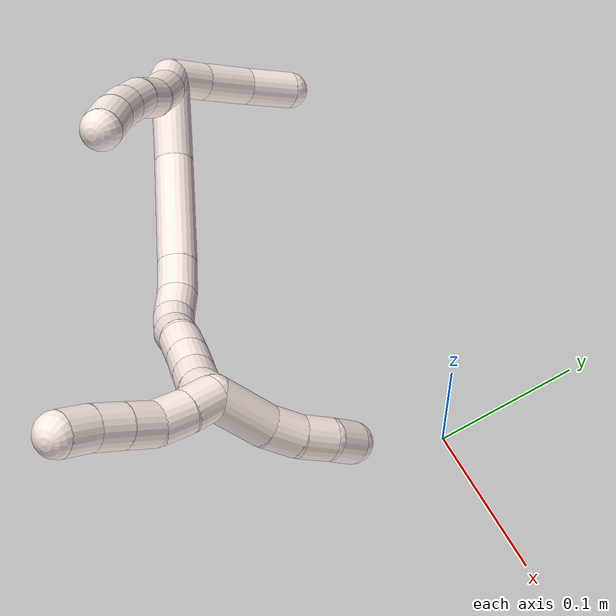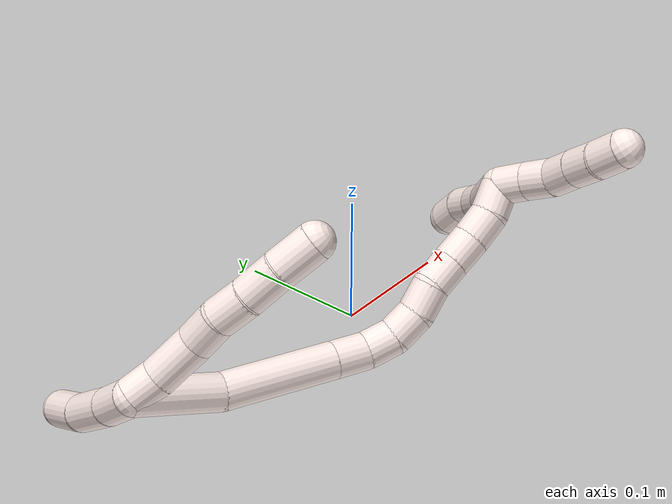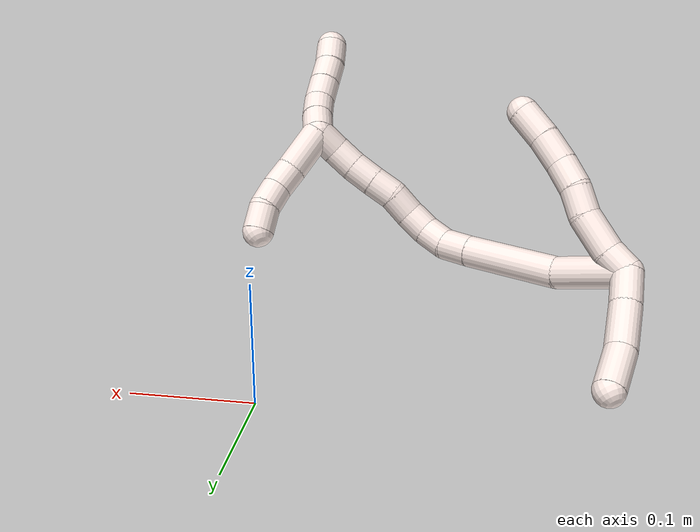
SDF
<sdf version="1.7">
 <world name="default">
  <model name="11">
   <static>0</static>
   <link name="11">
    <collision name="collision-cylinder-e_1_2_8">
     <pose>0.00318 0.00079 0.009537 -0.082662 0.320827 -0.013383</pose>
     <geometry><cylinder><radius>0.0125</radius><length>0.020169</length></cylinder></geometry>
     <surface>
      <friction><ode><mu>1.16</mu><mu2>1.16</mu2><slip1>0</slip1><slip2>0</slip2></ode></friction>
      <contact><ode><kp>1e+06</kp><kd>1</kd><max_vel>0</max_vel><min_depth>0.001</min_depth></ode></contact>
     </surface>
    </collision>
    <visual name="visual-cylinder-e_1_2_8">
     <pose>0.00318 0.00079 0.009537 -0.082662 0.320827 -0.013383</pose>
     <geometry><cylinder><radius>0.0125</radius><length>0.020169</length></cylinder></geometry>
     <material><ambient>1 0.933333 0.909804 1</ambient></material>
    </visual>
    <collision name="collision-cylinder-e_2_8_9">
     <pose>0.008588 0.004456 0.034996 -0.178694 0.136851 -0.012279</pose>
     <geometry><cylinder><radius>0.0125</radius><length>0.032662</length></cylinder></geometry>
     <surface>
      <friction><ode><mu>1.16</mu><mu2>1.16</mu2><slip1>0</slip1><slip2>0</slip2></ode></friction>
      <contact><ode><kp>1e+06</kp><kd>1</kd><max_vel>0</max_vel><min_depth>0.001</min_depth></ode></contact>
     </surface>
    </collision>
    <visual name="visual-cylinder-e_2_8_9">
     <pose>0.008588 0.004456 0.034996 -0.178694 0.136851 -0.012279</pose>
     <geometry><cylinder><radius>0.0125</radius><length>0.032662</length></cylinder></geometry>
     <material><ambient>1 0.933333 0.909804 1</ambient></material>
    </visual>
    <collision name="collision-cylinder-e_3_9_10">
     <pose>0.009552 0.009608 0.061939 -0.203669 -0.111894 0.011446</pose>
     <geometry><cylinder><radius>0.0125</radius><length>0.022651</length></cylinder></geometry>
     <surface>
      <friction><ode><mu>1.16</mu><mu2>1.16</mu2><slip1>0</slip1><slip2>0</slip2></ode></friction>
      <contact><ode><kp>1e+06</kp><kd>1</kd><max_vel>0</max_vel><min_depth>0.001</min_depth></ode></contact>
     </surface>
    </collision>
    <visual name="visual-cylinder-e_3_9_10">
     <pose>0.009552 0.009608 0.061939 -0.203669 -0.111894 0.011446</pose>
     <geometry><cylinder><radius>0.0125</radius><length>0.022651</length></cylinder></geometry>
     <material><ambient>1 0.933333 0.909804 1</ambient></material>
    </visual>
    <collision name="collision-cylinder-e_4_10_11">
     <pose>0.008875 0.012583 0.084335 -0.061376 0.051578 -0.001584</pose>
     <geometry><cylinder><radius>0.0125</radius><length>0.02282</length></cylinder></geometry>
     <surface>
      <friction><ode><mu>1.16</mu><mu2>1.16</mu2><slip1>0</slip1><slip2>0</slip2></ode></friction>
      <contact><ode><kp>1e+06</kp><kd>1</kd><max_vel>0</max_vel><min_depth>0.001</min_depth></ode></contact>
     </surface>
    </collision>
    <visual name="visual-cylinder-e_4_10_11">
     <pose>0.008875 0.012583 0.084335 -0.061376 0.051578 -0.001584</pose>
     <geometry><cylinder><radius>0.0125</radius><length>0.02282</length></cylinder></geometry>
     <material><ambient>1 0.933333 0.909804 1</ambient></material>
    </visual>
    <collision name="collision-cylinder-e_5_11_12">
     <pose>0.011216 0.014927 0.107894 -0.134157 0.141596 -0.009528</pose>
     <geometry><cylinder><radius>0.0125</radius><length>0.024842</length></cylinder></geometry>
     <surface>
      <friction><ode><mu>1.16</mu><mu2>1.16</mu2><slip1>0</slip1><slip2>0</slip2></ode></friction>
      <contact><ode><kp>1e+06</kp><kd>1</kd><max_vel>0</max_vel><min_depth>0.001</min_depth></ode></contact>
     </surface>
    </collision>
    <visual name="visual-cylinder-e_5_11_12">
     <pose>0.011216 0.014927 0.107894 -0.134157 0.141596 -0.009528</pose>
     <geometry><cylinder><radius>0.0125</radius><length>0.024842</length></cylinder></geometry>
     <material><ambient>1 0.933333 0.909804 1</ambient></material>
    </visual>
    <collision name="collision-cylinder-e_6_12_6">
     <pose>0.016059 0.017967 0.133073 -0.106984 0.232185 -0.012488</pose>
     <geometry><cylinder><radius>0.0125</radius><length>0.026855</length></cylinder></geometry>
     <surface>
      <friction><ode><mu>1.16</mu><mu2>1.16</mu2><slip1>0</slip1><slip2>0</slip2></ode></friction>
      <contact><ode><kp>1e+06</kp><kd>1</kd><max_vel>0</max_vel><min_depth>0.001</min_depth></ode></contact>
     </surface>
    </collision>
    <visual name="visual-cylinder-e_6_12_6">
     <pose>0.016059 0.017967 0.133073 -0.106984 0.232185 -0.012488</pose>
     <geometry><cylinder><radius>0.0125</radius><length>0.026855</length></cylinder></geometry>
     <material><ambient>1 0.933333 0.909804 1</ambient></material>
    </visual>
    <collision name="collision-cylinder-e_1_2_13">
     <pose>0.006589 0.001101 -0.01211 -3.05095 0.49659 -2.78756</pose>
     <geometry><cylinder><radius>0.0125</radius><length>0.02766</length></cylinder></geometry>
     <surface>
      <friction><ode><mu>1.16</mu><mu2>1.16</mu2><slip1>0</slip1><slip2>0</slip2></ode></friction>
      <contact><ode><kp>1e+06</kp><kd>1</kd><max_vel>0</max_vel><min_depth>0.001</min_depth></ode></contact>
     </surface>
    </collision>
    <visual name="visual-cylinder-e_1_2_13">
     <pose>0.006589 0.001101 -0.01211 -3.05095 0.49659 -2.78756</pose>
     <geometry><cylinder><radius>0.0125</radius><length>0.02766</length></cylinder></geometry>
     <material><ambient>1 0.933333 0.909804 1</ambient></material>
    </visual>
    <collision name="collision-cylinder-e_2_13_14">
     <pose>0.022901 0.004952 -0.03998 -2.9688 0.546106 -2.5417</pose>
     <geometry><cylinder><radius>0.0125</radius><length>0.037444</length></cylinder></geometry>
     <surface>
      <friction><ode><mu>1.16</mu><mu2>1.16</mu2><slip1>0</slip1><slip2>0</slip2></ode></friction>
      <contact><ode><kp>1e+06</kp><kd>1</kd><max_vel>0</max_vel><min_depth>0.001</min_depth></ode></contact>
     </surface>
    </collision>
    <visual name="visual-cylinder-e_2_13_14">
     <pose>0.022901 0.004952 -0.03998 -2.9688 0.546106 -2.5417</pose>
     <geometry><cylinder><radius>0.0125</radius><length>0.037444</length></cylinder></geometry>
     <material><ambient>1 0.933333 0.909804 1</ambient></material>
    </visual>
    <collision name="collision-cylinder-e_3_14_5">
     <pose>0.043421 0.012598 -0.068543 -2.7764 0.667146 -2.1624</pose>
     <geometry><cylinder><radius>0.0125</radius><length>0.034897</length></cylinder></geometry>
     <surface>
      <friction><ode><mu>1.16</mu><mu2>1.16</mu2><slip1>0</slip1><slip2>0</slip2></ode></friction>
      <contact><ode><kp>1e+06</kp><kd>1</kd><max_vel>0</max_vel><min_depth>0.001</min_depth></ode></contact>
     </surface>
    </collision>
    <visual name="visual-cylinder-e_3_14_5">
     <pose>0.043421 0.012598 -0.068543 -2.7764 0.667146 -2.1624</pose>
     <geometry><cylinder><radius>0.0125</radius><length>0.034897</length></cylinder></geometry>
     <material><ambient>1 0.933333 0.909804 1</ambient></material>
    </visual>
    <collision name="collision-cylinder-e_1_2_15">
     <pose>0.021317 -0.013388 0.015129 0.724406 0.812234 0.323049</pose>
     <geometry><cylinder><radius>0.0125</radius><length>0.058737</length></cylinder></geometry>
     <surface>
      <friction><ode><mu>1.16</mu><mu2>1.16</mu2><slip1>0</slip1><slip2>0</slip2></ode></friction>
      <contact><ode><kp>1e+06</kp><kd>1</kd><max_vel>0</max_vel><min_depth>0.001</min_depth></ode></contact>
     </surface>
    </collision>
    <visual name="visual-cylinder-e_1_2_15">
     <pose>0.021317 -0.013388 0.015129 0.724406 0.812234 0.323049</pose>
     <geometry><cylinder><radius>0.0125</radius><length>0.058737</length></cylinder></geometry>
     <material><ambient>1 0.933333 0.909804 1</ambient></material>
    </visual>
    <collision name="collision-cylinder-e_2_15_16">
     <pose>0.06837 -0.037576 0.056548 0.389815 0.735866 0.151908</pose>
     <geometry><cylinder><radius>0.0125</radius><length>0.076686</length></cylinder></geometry>
     <surface>
      <friction><ode><mu>1.16</mu><mu2>1.16</mu2><slip1>0</slip1><slip2>0</slip2></ode></friction>
      <contact><ode><kp>1e+06</kp><kd>1</kd><max_vel>0</max_vel><min_depth>0.001</min_depth></ode></contact>
     </surface>
    </collision>
    <visual name="visual-cylinder-e_2_15_16">
     <pose>0.06837 -0.037576 0.056548 0.389815 0.735866 0.151908</pose>
     <geometry><cylinder><radius>0.0125</radius><length>0.076686</length></cylinder></geometry>
     <material><ambient>1 0.933333 0.909804 1</ambient></material>
    </visual>
    <collision name="collision-cylinder-e_3_16_17">
     <pose>0.101494 -0.051567 0.091085 0.369036 0.695919 0.13519</pose>
     <geometry><cylinder><radius>0.0125</radius><length>0.023044</length></cylinder></geometry>
     <surface>
      <friction><ode><mu>1.16</mu><mu2>1.16</mu2><slip1>0</slip1><slip2>0</slip2></ode></friction>
      <contact><ode><kp>1e+06</kp><kd>1</kd><max_vel>0</max_vel><min_depth>0.001</min_depth></ode></contact>
     </surface>
    </collision>
    <visual name="visual-cylinder-e_3_16_17">
     <pose>0.101494 -0.051567 0.091085 0.369036 0.695919 0.13519</pose>
     <geometry><cylinder><radius>0.0125</radius><length>0.023044</length></cylinder></geometry>
     <material><ambient>1 0.933333 0.909804 1</ambient></material>
    </visual>
    <collision name="collision-cylinder-e_4_17_18">
     <pose>0.113466 -0.055643 0.108357 0.097933 0.468167 0.02337</pose>
     <geometry><cylinder><radius>0.0125</radius><length>0.020324</length></cylinder></geometry>
     <surface>
      <friction><ode><mu>1.16</mu><mu2>1.16</mu2><slip1>0</slip1><slip2>0</slip2></ode></friction>
      <contact><ode><kp>1e+06</kp><kd>1</kd><max_vel>0</max_vel><min_depth>0.001</min_depth></ode></contact>
     </surface>
    </collision>
    <visual name="visual-cylinder-e_4_17_18">
     <pose>0.113466 -0.055643 0.108357 0.097933 0.468167 0.02337</pose>
     <geometry><cylinder><radius>0.0125</radius><length>0.020324</length></cylinder></geometry>
     <material><ambient>1 0.933333 0.909804 1</ambient></material>
    </visual>
    <collision name="collision-cylinder-e_5_18_19">
     <pose>0.121934 -0.054166 0.126323 -0.258439 0.397448 -0.052325</pose>
     <geometry><cylinder><radius>0.0125</radius><length>0.020059</length></cylinder></geometry>
     <surface>
      <friction><ode><mu>1.16</mu><mu2>1.16</mu2><slip1>0</slip1><slip2>0</slip2></ode></friction>
      <contact><ode><kp>1e+06</kp><kd>1</kd><max_vel>0</max_vel><min_depth>0.001</min_depth></ode></contact>
     </surface>
    </collision>
    <visual name="visual-cylinder-e_5_18_19">
     <pose>0.121934 -0.054166 0.126323 -0.258439 0.397448 -0.052325</pose>
     <geometry><cylinder><radius>0.0125</radius><length>0.020059</length></cylinder></geometry>
     <material><ambient>1 0.933333 0.909804 1</ambient></material>
    </visual>
    <collision name="collision-cylinder-e_6_19_20">
     <pose>0.129257 -0.046812 0.143464 -0.546737 0.344223 -0.097403</pose>
     <geometry><cylinder><radius>0.0125</radius><length>0.020395</length></cylinder></geometry>
     <surface>
      <friction><ode><mu>1.16</mu><mu2>1.16</mu2><slip1>0</slip1><slip2>0</slip2></ode></friction>
      <contact><ode><kp>1e+06</kp><kd>1</kd><max_vel>0</max_vel><min_depth>0.001</min_depth></ode></contact>
     </surface>
    </collision>
    <visual name="visual-cylinder-e_6_19_20">
     <pose>0.129257 -0.046812 0.143464 -0.546737 0.344223 -0.097403</pose>
     <geometry><cylinder><radius>0.0125</radius><length>0.020395</length></cylinder></geometry>
     <material><ambient>1 0.933333 0.909804 1</ambient></material>
    </visual>
    <collision name="collision-cylinder-e_7_20_21">
     <pose>0.138147 -0.038878 0.159617 -0.354405 0.571041 -0.105038</pose>
     <geometry><cylinder><radius>0.0125</radius><length>0.020159</length></cylinder></geometry>
     <surface>
      <friction><ode><mu>1.16</mu><mu2>1.16</mu2><slip1>0</slip1><slip2>0</slip2></ode></friction>
      <contact><ode><kp>1e+06</kp><kd>1</kd><max_vel>0</max_vel><min_depth>0.001</min_depth></ode></contact>
     </surface>
    </collision>
    <visual name="visual-cylinder-e_7_20_21">
     <pose>0.138147 -0.038878 0.159617 -0.354405 0.571041 -0.105038</pose>
     <geometry><cylinder><radius>0.0125</radius><length>0.020159</length></cylinder></geometry>
     <material><ambient>1 0.933333 0.909804 1</ambient></material>
    </visual>
    <collision name="collision-cylinder-e_8_21_22">
     <pose>0.14875 -0.033064 0.17585 -0.33379 0.531761 -0.09169</pose>
     <geometry><cylinder><radius>0.0125</radius><length>0.020334</length></cylinder></geometry>
     <surface>
      <friction><ode><mu>1.16</mu><mu2>1.16</mu2><slip1>0</slip1><slip2>0</slip2></ode></friction>
      <contact><ode><kp>1e+06</kp><kd>1</kd><max_vel>0</max_vel><min_depth>0.001</min_depth></ode></contact>
     </surface>
    </collision>
    <visual name="visual-cylinder-e_8_21_22">
     <pose>0.14875 -0.033064 0.17585 -0.33379 0.531761 -0.09169</pose>
     <geometry><cylinder><radius>0.0125</radius><length>0.020334</length></cylinder></geometry>
     <material><ambient>1 0.933333 0.909804 1</ambient></material>
    </visual>
    <collision name="collision-cylinder-e_9_22_23">
     <pose>0.158175 -0.026699 0.192476 -0.3965 0.4409 -0.089974</pose>
     <geometry><cylinder><radius>0.0125</radius><length>0.020011</length></cylinder></geometry>
     <surface>
      <friction><ode><mu>1.16</mu><mu2>1.16</mu2><slip1>0</slip1><slip2>0</slip2></ode></friction>
      <contact><ode><kp>1e+06</kp><kd>1</kd><max_vel>0</max_vel><min_depth>0.001</min_depth></ode></contact>
     </surface>
    </collision>
    <visual name="visual-cylinder-e_9_22_23">
     <pose>0.158175 -0.026699 0.192476 -0.3965 0.4409 -0.089974</pose>
     <geometry><cylinder><radius>0.0125</radius><length>0.020011</length></cylinder></geometry>
     <material><ambient>1 0.933333 0.909804 1</ambient></material>
    </visual>
    <collision name="collision-cylinder-e_10_23_1">
     <pose>0.166643 -0.01724 0.207845 -0.704066 0.427576 -0.159164</pose>
     <geometry><cylinder><radius>0.0125</radius><length>0.02025</length></cylinder></geometry>
     <surface>
      <friction><ode><mu>1.16</mu><mu2>1.16</mu2><slip1>0</slip1><slip2>0</slip2></ode></friction>
      <contact><ode><kp>1e+06</kp><kd>1</kd><max_vel>0</max_vel><min_depth>0.001</min_depth></ode></contact>
     </surface>
    </collision>
    <visual name="visual-cylinder-e_10_23_1">
     <pose>0.166643 -0.01724 0.207845 -0.704066 0.427576 -0.159164</pose>
     <geometry><cylinder><radius>0.0125</radius><length>0.02025</length></cylinder></geometry>
     <material><ambient>1 0.933333 0.909804 1</ambient></material>
    </visual>
    <collision name="collision-cylinder-e_1_1_24">
     <pose>0.186581 -0.013125 0.204632 2.96291 0.98682 2.81148</pose>
     <geometry><cylinder><radius>0.0125</radius><length>0.037732</length></cylinder></geometry>
     <surface>
      <friction><ode><mu>1.16</mu><mu2>1.16</mu2><slip1>0</slip1><slip2>0</slip2></ode></friction>
      <contact><ode><kp>1e+06</kp><kd>1</kd><max_vel>0</max_vel><min_depth>0.001</min_depth></ode></contact>
     </surface>
    </collision>
    <visual name="visual-cylinder-e_1_1_24">
     <pose>0.186581 -0.013125 0.204632 2.96291 0.98682 2.81148</pose>
     <geometry><cylinder><radius>0.0125</radius><length>0.037732</length></cylinder></geometry>
     <material><ambient>1 0.933333 0.909804 1</ambient></material>
    </visual>
    <collision name="collision-cylinder-e_2_24_25">
     <pose>0.210833 -0.014174 0.188197 -3.01334 0.937449 -2.8893</pose>
     <geometry><cylinder><radius>0.0125</radius><length>0.02112</length></cylinder></geometry>
     <surface>
      <friction><ode><mu>1.16</mu><mu2>1.16</mu2><slip1>0</slip1><slip2>0</slip2></ode></friction>
      <contact><ode><kp>1e+06</kp><kd>1</kd><max_vel>0</max_vel><min_depth>0.001</min_depth></ode></contact>
     </surface>
    </collision>
    <visual name="visual-cylinder-e_2_24_25">
     <pose>0.210833 -0.014174 0.188197 -3.01334 0.937449 -2.8893</pose>
     <geometry><cylinder><radius>0.0125</radius><length>0.02112</length></cylinder></geometry>
     <material><ambient>1 0.933333 0.909804 1</ambient></material>
    </visual>
    <collision name="collision-cylinder-e_3_25_26">
     <pose>0.226457 -0.011513 0.174873 -2.8861 0.767921 -2.52596</pose>
     <geometry><cylinder><radius>0.0125</radius><length>0.020477</length></cylinder></geometry>
     <surface>
      <friction><ode><mu>1.16</mu><mu2>1.16</mu2><slip1>0</slip1><slip2>0</slip2></ode></friction>
      <contact><ode><kp>1e+06</kp><kd>1</kd><max_vel>0</max_vel><min_depth>0.001</min_depth></ode></contact>
     </surface>
    </collision>
    <visual name="visual-cylinder-e_3_25_26">
     <pose>0.226457 -0.011513 0.174873 -2.8861 0.767921 -2.52596</pose>
     <geometry><cylinder><radius>0.0125</radius><length>0.020477</length></cylinder></geometry>
     <material><ambient>1 0.933333 0.909804 1</ambient></material>
    </visual>
    <collision name="collision-cylinder-e_4_26_4">
     <pose>0.239354 -0.010478 0.159222 3.04505 0.594089 2.82853</pose>
     <geometry><cylinder><radius>0.0125</radius><length>0.020671</length></cylinder></geometry>
     <surface>
      <friction><ode><mu>1.16</mu><mu2>1.16</mu2><slip1>0</slip1><slip2>0</slip2></ode></friction>
      <contact><ode><kp>1e+06</kp><kd>1</kd><max_vel>0</max_vel><min_depth>0.001</min_depth></ode></contact>
     </surface>
    </collision>
    <visual name="visual-cylinder-e_4_26_4">
     <pose>0.239354 -0.010478 0.159222 3.04505 0.594089 2.82853</pose>
     <geometry><cylinder><radius>0.0125</radius><length>0.020671</length></cylinder></geometry>
     <material><ambient>1 0.933333 0.909804 1</ambient></material>
    </visual>
    <collision name="collision-cylinder-e_1_1_27">
     <pose>0.168497 -0.014558 0.224019 0.344376 -0.23665 -0.041343</pose>
     <geometry><cylinder><radius>0.0125</radius><length>0.02</length></cylinder></geometry>
     <surface>
      <friction><ode><mu>1.16</mu><mu2>1.16</mu2><slip1>0</slip1><slip2>0</slip2></ode></friction>
      <contact><ode><kp>1e+06</kp><kd>1</kd><max_vel>0</max_vel><min_depth>0.001</min_depth></ode></contact>
     </surface>
    </collision>
    <visual name="visual-cylinder-e_1_1_27">
     <pose>0.168497 -0.014558 0.224019 0.344376 -0.23665 -0.041343</pose>
     <geometry><cylinder><radius>0.0125</radius><length>0.02</length></cylinder></geometry>
     <material><ambient>1 0.933333 0.909804 1</ambient></material>
    </visual>
    <collision name="collision-cylinder-e_2_27_28">
     <pose>0.162808 -0.02122 0.241966 0.366775 -0.341109 -0.063865</pose>
     <geometry><cylinder><radius>0.0125</radius><length>0.02</length></cylinder></geometry>
     <surface>
      <friction><ode><mu>1.16</mu><mu2>1.16</mu2><slip1>0</slip1><slip2>0</slip2></ode></friction>
      <contact><ode><kp>1e+06</kp><kd>1</kd><max_vel>0</max_vel><min_depth>0.001</min_depth></ode></contact>
     </surface>
    </collision>
    <visual name="visual-cylinder-e_2_27_28">
     <pose>0.162808 -0.02122 0.241966 0.366775 -0.341109 -0.063865</pose>
     <geometry><cylinder><radius>0.0125</radius><length>0.02</length></cylinder></geometry>
     <material><ambient>1 0.933333 0.909804 1</ambient></material>
    </visual>
    <collision name="collision-cylinder-e_3_28_29">
     <pose>0.154225 -0.025612 0.259221 0.119198 -0.551272 -0.03375</pose>
     <geometry><cylinder><radius>0.0125</radius><length>0.02</length></cylinder></geometry>
     <surface>
      <friction><ode><mu>1.16</mu><mu2>1.16</mu2><slip1>0</slip1><slip2>0</slip2></ode></friction>
      <contact><ode><kp>1e+06</kp><kd>1</kd><max_vel>0</max_vel><min_depth>0.001</min_depth></ode></contact>
     </surface>
    </collision>
    <visual name="visual-cylinder-e_3_28_29">
     <pose>0.154225 -0.025612 0.259221 0.119198 -0.551272 -0.03375</pose>
     <geometry><cylinder><radius>0.0125</radius><length>0.02</length></cylinder></geometry>
     <material><ambient>1 0.933333 0.909804 1</ambient></material>
    </visual>
    <collision name="collision-cylinder-e_4_29_30">
     <pose>0.143725 -0.027892 0.276089 0.149491 -0.554046 -0.042578</pose>
     <geometry><cylinder><radius>0.0125</radius><length>0.02</length></cylinder></geometry>
     <surface>
      <friction><ode><mu>1.16</mu><mu2>1.16</mu2><slip1>0</slip1><slip2>0</slip2></ode></friction>
      <contact><ode><kp>1e+06</kp><kd>1</kd><max_vel>0</max_vel><min_depth>0.001</min_depth></ode></contact>
     </surface>
    </collision>
    <visual name="visual-cylinder-e_4_29_30">
     <pose>0.143725 -0.027892 0.276089 0.149491 -0.554046 -0.042578</pose>
     <geometry><cylinder><radius>0.0125</radius><length>0.02</length></cylinder></geometry>
     <material><ambient>1 0.933333 0.909804 1</ambient></material>
    </visual>
    <collision name="collision-cylinder-e_5_30_3">
     <pose>0.13438 -0.030194 0.293567 0.11373 -0.420719 -0.024309</pose>
     <geometry><cylinder><radius>0.0125</radius><length>0.02</length></cylinder></geometry>
     <surface>
      <friction><ode><mu>1.16</mu><mu2>1.16</mu2><slip1>0</slip1><slip2>0</slip2></ode></friction>
      <contact><ode><kp>1e+06</kp><kd>1</kd><max_vel>0</max_vel><min_depth>0.001</min_depth></ode></contact>
     </surface>
    </collision>
    <visual name="visual-cylinder-e_5_30_3">
     <pose>0.13438 -0.030194 0.293567 0.11373 -0.420719 -0.024309</pose>
     <geometry><cylinder><radius>0.0125</radius><length>0.02</length></cylinder></geometry>
     <material><ambient>1 0.933333 0.909804 1</ambient></material>
    </visual>
    <collision name="collision-sphere-3">
     <pose>0.130296 -0.03123 0.302636 0 -0 0</pose>
     <geometry><sphere><radius>0.0125</radius></sphere></geometry>
     <surface>
      <friction><ode><mu>1.16</mu><mu2>1.16</mu2><slip1>0</slip1><slip2>0</slip2></ode></friction>
      <contact><ode><kp>1e+06</kp><kd>1</kd><max_vel>0</max_vel><min_depth>0.001</min_depth></ode></contact>
     </surface>
    </collision>
    <visual name="visual-sphere-3">
     <pose>0.130296 -0.03123 0.302636 0 -0 0</pose>
     <geometry><sphere><radius>0.0125</radius></sphere></geometry>
     <material><ambient>1 0.933333 0.909804 1</ambient></material>
    </visual>
    <collision name="collision-sphere-30">
     <pose>0.138464 -0.029158 0.284498 0 -0 0</pose>
     <geometry><sphere><radius>0.0125</radius></sphere></geometry>
     <surface>
      <friction><ode><mu>1.16</mu><mu2>1.16</mu2><slip1>0</slip1><slip2>0</slip2></ode></friction>
      <contact><ode><kp>1e+06</kp><kd>1</kd><max_vel>0</max_vel><min_depth>0.001</min_depth></ode></contact>
     </surface>
    </collision>
    <visual name="visual-sphere-30">
     <pose>0.138464 -0.029158 0.284498 0 -0 0</pose>
     <geometry><sphere><radius>0.0125</radius></sphere></geometry>
     <material><ambient>1 0.933333 0.909804 1</ambient></material>
    </visual>
    <collision name="collision-sphere-29">
     <pose>0.148987 -0.026625 0.26768 0 -0 0</pose>
     <geometry><sphere><radius>0.0125</radius></sphere></geometry>
     <surface>
      <friction><ode><mu>1.16</mu><mu2>1.16</mu2><slip1>0</slip1><slip2>0</slip2></ode></friction>
      <contact><ode><kp>1e+06</kp><kd>1</kd><max_vel>0</max_vel><min_depth>0.001</min_depth></ode></contact>
     </surface>
    </collision>
    <visual name="visual-sphere-29">
     <pose>0.148987 -0.026625 0.26768 0 -0 0</pose>
     <geometry><sphere><radius>0.0125</radius></sphere></geometry>
     <material><ambient>1 0.933333 0.909804 1</ambient></material>
    </visual>
    <collision name="collision-sphere-28">
     <pose>0.159462 -0.024599 0.250763 0 -0 0</pose>
     <geometry><sphere><radius>0.0125</radius></sphere></geometry>
     <surface>
      <friction><ode><mu>1.16</mu><mu2>1.16</mu2><slip1>0</slip1><slip2>0</slip2></ode></friction>
      <contact><ode><kp>1e+06</kp><kd>1</kd><max_vel>0</max_vel><min_depth>0.001</min_depth></ode></contact>
     </surface>
    </collision>
    <visual name="visual-sphere-28">
     <pose>0.159462 -0.024599 0.250763 0 -0 0</pose>
     <geometry><sphere><radius>0.0125</radius></sphere></geometry>
     <material><ambient>1 0.933333 0.909804 1</ambient></material>
    </visual>
    <collision name="collision-sphere-27">
     <pose>0.166153 -0.01784 0.233169 0 -0 0</pose>
     <geometry><sphere><radius>0.0125</radius></sphere></geometry>
     <surface>
      <friction><ode><mu>1.16</mu><mu2>1.16</mu2><slip1>0</slip1><slip2>0</slip2></ode></friction>
      <contact><ode><kp>1e+06</kp><kd>1</kd><max_vel>0</max_vel><min_depth>0.001</min_depth></ode></contact>
     </surface>
    </collision>
    <visual name="visual-sphere-27">
     <pose>0.166153 -0.01784 0.233169 0 -0 0</pose>
     <geometry><sphere><radius>0.0125</radius></sphere></geometry>
     <material><ambient>1 0.933333 0.909804 1</ambient></material>
    </visual>
    <collision name="collision-sphere-4">
     <pose>0.245139 -0.011303 0.150697 0 -0 0</pose>
     <geometry><sphere><radius>0.0125</radius></sphere></geometry>
     <surface>
      <friction><ode><mu>1.16</mu><mu2>1.16</mu2><slip1>0</slip1><slip2>0</slip2></ode></friction>
      <contact><ode><kp>1e+06</kp><kd>1</kd><max_vel>0</max_vel><min_depth>0.001</min_depth></ode></contact>
     </surface>
    </collision>
    <visual name="visual-sphere-4">
     <pose>0.245139 -0.011303 0.150697 0 -0 0</pose>
     <geometry><sphere><radius>0.0125</radius></sphere></geometry>
     <material><ambient>1 0.933333 0.909804 1</ambient></material>
    </visual>
    <collision name="collision-sphere-26">
     <pose>0.233569 -0.009652 0.167747 0 -0 0</pose>
     <geometry><sphere><radius>0.0125</radius></sphere></geometry>
     <surface>
      <friction><ode><mu>1.16</mu><mu2>1.16</mu2><slip1>0</slip1><slip2>0</slip2></ode></friction>
      <contact><ode><kp>1e+06</kp><kd>1</kd><max_vel>0</max_vel><min_depth>0.001</min_depth></ode></contact>
     </surface>
    </collision>
    <visual name="visual-sphere-26">
     <pose>0.233569 -0.009652 0.167747 0 -0 0</pose>
     <geometry><sphere><radius>0.0125</radius></sphere></geometry>
     <material><ambient>1 0.933333 0.909804 1</ambient></material>
    </visual>
    <collision name="collision-sphere-25">
     <pose>0.219345 -0.013375 0.181999 0 -0 0</pose>
     <geometry><sphere><radius>0.0125</radius></sphere></geometry>
     <surface>
      <friction><ode><mu>1.16</mu><mu2>1.16</mu2><slip1>0</slip1><slip2>0</slip2></ode></friction>
      <contact><ode><kp>1e+06</kp><kd>1</kd><max_vel>0</max_vel><min_depth>0.001</min_depth></ode></contact>
     </surface>
    </collision>
    <visual name="visual-sphere-25">
     <pose>0.219345 -0.013375 0.181999 0 -0 0</pose>
     <geometry><sphere><radius>0.0125</radius></sphere></geometry>
     <material><ambient>1 0.933333 0.909804 1</ambient></material>
    </visual>
    <collision name="collision-sphere-24">
     <pose>0.202321 -0.014974 0.194396 0 -0 0</pose>
     <geometry><sphere><radius>0.0125</radius></sphere></geometry>
     <surface>
      <friction><ode><mu>1.16</mu><mu2>1.16</mu2><slip1>0</slip1><slip2>0</slip2></ode></friction>
      <contact><ode><kp>1e+06</kp><kd>1</kd><max_vel>0</max_vel><min_depth>0.001</min_depth></ode></contact>
     </surface>
    </collision>
    <visual name="visual-sphere-24">
     <pose>0.202321 -0.014974 0.194396 0 -0 0</pose>
     <geometry><sphere><radius>0.0125</radius></sphere></geometry>
     <material><ambient>1 0.933333 0.909804 1</ambient></material>
    </visual>
    <collision name="collision-sphere-1">
     <pose>0.170842 -0.011276 0.214868 0 -0 0</pose>
     <geometry><sphere><radius>0.0125</radius></sphere></geometry>
     <surface>
      <friction><ode><mu>1.16</mu><mu2>1.16</mu2><slip1>0</slip1><slip2>0</slip2></ode></friction>
      <contact><ode><kp>1e+06</kp><kd>1</kd><max_vel>0</max_vel><min_depth>0.001</min_depth></ode></contact>
     </surface>
    </collision>
    <visual name="visual-sphere-1">
     <pose>0.170842 -0.011276 0.214868 0 -0 0</pose>
     <geometry><sphere><radius>0.0125</radius></sphere></geometry>
     <material><ambient>1 0.933333 0.909804 1</ambient></material>
    </visual>
    <collision name="collision-sphere-23">
     <pose>0.162445 -0.023204 0.200823 0 -0 0</pose>
     <geometry><sphere><radius>0.0125</radius></sphere></geometry>
     <surface>
      <friction><ode><mu>1.16</mu><mu2>1.16</mu2><slip1>0</slip1><slip2>0</slip2></ode></friction>
      <contact><ode><kp>1e+06</kp><kd>1</kd><max_vel>0</max_vel><min_depth>0.001</min_depth></ode></contact>
     </surface>
    </collision>
    <visual name="visual-sphere-23">
     <pose>0.162445 -0.023204 0.200823 0 -0 0</pose>
     <geometry><sphere><radius>0.0125</radius></sphere></geometry>
     <material><ambient>1 0.933333 0.909804 1</ambient></material>
    </visual>
    <collision name="collision-sphere-22">
     <pose>0.153905 -0.030193 0.18413 0 -0 0</pose>
     <geometry><sphere><radius>0.0125</radius></sphere></geometry>
     <surface>
      <friction><ode><mu>1.16</mu><mu2>1.16</mu2><slip1>0</slip1><slip2>0</slip2></ode></friction>
      <contact><ode><kp>1e+06</kp><kd>1</kd><max_vel>0</max_vel><min_depth>0.001</min_depth></ode></contact>
     </surface>
    </collision>
    <visual name="visual-sphere-22">
     <pose>0.153905 -0.030193 0.18413 0 -0 0</pose>
     <geometry><sphere><radius>0.0125</radius></sphere></geometry>
     <material><ambient>1 0.933333 0.909804 1</ambient></material>
    </visual>
    <collision name="collision-sphere-21">
     <pose>0.143595 -0.035935 0.167571 0 -0 0</pose>
     <geometry><sphere><radius>0.0125</radius></sphere></geometry>
     <surface>
      <friction><ode><mu>1.16</mu><mu2>1.16</mu2><slip1>0</slip1><slip2>0</slip2></ode></friction>
      <contact><ode><kp>1e+06</kp><kd>1</kd><max_vel>0</max_vel><min_depth>0.001</min_depth></ode></contact>
     </surface>
    </collision>
    <visual name="visual-sphere-21">
     <pose>0.143595 -0.035935 0.167571 0 -0 0</pose>
     <geometry><sphere><radius>0.0125</radius></sphere></geometry>
     <material><ambient>1 0.933333 0.909804 1</ambient></material>
    </visual>
    <collision name="collision-sphere-12">
     <pose>0.012969 0.016572 0.120081 0 -0 0</pose>
     <geometry><sphere><radius>0.0125</radius></sphere></geometry>
     <surface>
      <friction><ode><mu>1.16</mu><mu2>1.16</mu2><slip1>0</slip1><slip2>0</slip2></ode></friction>
      <contact><ode><kp>1e+06</kp><kd>1</kd><max_vel>0</max_vel><min_depth>0.001</min_depth></ode></contact>
     </surface>
    </collision>
    <visual name="visual-sphere-12">
     <pose>0.012969 0.016572 0.120081 0 -0 0</pose>
     <geometry><sphere><radius>0.0125</radius></sphere></geometry>
     <material><ambient>1 0.933333 0.909804 1</ambient></material>
    </visual>
    <collision name="collision-sphere-11">
     <pose>0.009464 0.013282 0.095708 0 -0 0</pose>
     <geometry><sphere><radius>0.0125</radius></sphere></geometry>
     <surface>
      <friction><ode><mu>1.16</mu><mu2>1.16</mu2><slip1>0</slip1><slip2>0</slip2></ode></friction>
      <contact><ode><kp>1e+06</kp><kd>1</kd><max_vel>0</max_vel><min_depth>0.001</min_depth></ode></contact>
     </surface>
    </collision>
    <visual name="visual-sphere-11">
     <pose>0.009464 0.013282 0.095708 0 -0 0</pose>
     <geometry><sphere><radius>0.0125</radius></sphere></geometry>
     <material><ambient>1 0.933333 0.909804 1</ambient></material>
    </visual>
    <collision name="collision-sphere-10">
     <pose>0.008287 0.011885 0.072961 0 -0 0</pose>
     <geometry><sphere><radius>0.0125</radius></sphere></geometry>
     <surface>
      <friction><ode><mu>1.16</mu><mu2>1.16</mu2><slip1>0</slip1><slip2>0</slip2></ode></friction>
      <contact><ode><kp>1e+06</kp><kd>1</kd><max_vel>0</max_vel><min_depth>0.001</min_depth></ode></contact>
     </surface>
    </collision>
    <visual name="visual-sphere-10">
     <pose>0.008287 0.011885 0.072961 0 -0 0</pose>
     <geometry><sphere><radius>0.0125</radius></sphere></geometry>
     <material><ambient>1 0.933333 0.909804 1</ambient></material>
    </visual>
    <collision name="collision-sphere-9">
     <pose>0.010816 0.007332 0.050917 0 -0 0</pose>
     <geometry><sphere><radius>0.0125</radius></sphere></geometry>
     <surface>
      <friction><ode><mu>1.16</mu><mu2>1.16</mu2><slip1>0</slip1><slip2>0</slip2></ode></friction>
      <contact><ode><kp>1e+06</kp><kd>1</kd><max_vel>0</max_vel><min_depth>0.001</min_depth></ode></contact>
     </surface>
    </collision>
    <visual name="visual-sphere-9">
     <pose>0.010816 0.007332 0.050917 0 -0 0</pose>
     <geometry><sphere><radius>0.0125</radius></sphere></geometry>
     <material><ambient>1 0.933333 0.909804 1</ambient></material>
    </visual>
    <collision name="collision-sphere-2">
     <geometry><sphere><radius>0.0125</radius></sphere></geometry>
     <surface>
      <friction><ode><mu>1.16</mu><mu2>1.16</mu2><slip1>0</slip1><slip2>0</slip2></ode></friction>
      <contact><ode><kp>1e+06</kp><kd>1</kd><max_vel>0</max_vel><min_depth>0.001</min_depth></ode></contact>
     </surface>
    </collision>
    <visual name="visual-sphere-2">
     <geometry><sphere><radius>0.0125</radius></sphere></geometry>
     <material><ambient>1 0.933333 0.909804 1</ambient></material>
    </visual>
    <collision name="collision-sphere-19">
     <pose>0.125816 -0.051803 0.135264 0 -0 0</pose>
     <geometry><sphere><radius>0.0125</radius></sphere></geometry>
     <surface>
      <friction><ode><mu>1.16</mu><mu2>1.16</mu2><slip1>0</slip1><slip2>0</slip2></ode></friction>
      <contact><ode><kp>1e+06</kp><kd>1</kd><max_vel>0</max_vel><min_depth>0.001</min_depth></ode></contact>
     </surface>
    </collision>
    <visual name="visual-sphere-19">
     <pose>0.125816 -0.051803 0.135264 0 -0 0</pose>
     <geometry><sphere><radius>0.0125</radius></sphere></geometry>
     <material><ambient>1 0.933333 0.909804 1</ambient></material>
    </visual>
    <collision name="collision-sphere-8">
     <pose>0.00636 0.00158 0.019075 0 -0 0</pose>
     <geometry><sphere><radius>0.0125</radius></sphere></geometry>
     <surface>
      <friction><ode><mu>1.16</mu><mu2>1.16</mu2><slip1>0</slip1><slip2>0</slip2></ode></friction>
      <contact><ode><kp>1e+06</kp><kd>1</kd><max_vel>0</max_vel><min_depth>0.001</min_depth></ode></contact>
     </surface>
    </collision>
    <visual name="visual-sphere-8">
     <pose>0.00636 0.00158 0.019075 0 -0 0</pose>
     <geometry><sphere><radius>0.0125</radius></sphere></geometry>
     <material><ambient>1 0.933333 0.909804 1</ambient></material>
    </visual>
    <collision name="collision-sphere-6">
     <pose>0.019149 0.019363 0.146065 0 -0 0</pose>
     <geometry><sphere><radius>0.0125</radius></sphere></geometry>
     <surface>
      <friction><ode><mu>1.16</mu><mu2>1.16</mu2><slip1>0</slip1><slip2>0</slip2></ode></friction>
      <contact><ode><kp>1e+06</kp><kd>1</kd><max_vel>0</max_vel><min_depth>0.001</min_depth></ode></contact>
     </surface>
    </collision>
    <visual name="visual-sphere-6">
     <pose>0.019149 0.019363 0.146065 0 -0 0</pose>
     <geometry><sphere><radius>0.0125</radius></sphere></geometry>
     <material><ambient>1 0.933333 0.909804 1</ambient></material>
    </visual>
    <collision name="collision-sphere-13">
     <pose>0.013178 0.002201 -0.024219 0 -0 0</pose>
     <geometry><sphere><radius>0.0125</radius></sphere></geometry>
     <surface>
      <friction><ode><mu>1.16</mu><mu2>1.16</mu2><slip1>0</slip1><slip2>0</slip2></ode></friction>
      <contact><ode><kp>1e+06</kp><kd>1</kd><max_vel>0</max_vel><min_depth>0.001</min_depth></ode></contact>
     </surface>
    </collision>
    <visual name="visual-sphere-13">
     <pose>0.013178 0.002201 -0.024219 0 -0 0</pose>
     <geometry><sphere><radius>0.0125</radius></sphere></geometry>
     <material><ambient>1 0.933333 0.909804 1</ambient></material>
    </visual>
    <collision name="collision-sphere-14">
     <pose>0.032625 0.007703 -0.05574 0 -0 0</pose>
     <geometry><sphere><radius>0.0125</radius></sphere></geometry>
     <surface>
      <friction><ode><mu>1.16</mu><mu2>1.16</mu2><slip1>0</slip1><slip2>0</slip2></ode></friction>
      <contact><ode><kp>1e+06</kp><kd>1</kd><max_vel>0</max_vel><min_depth>0.001</min_depth></ode></contact>
     </surface>
    </collision>
    <visual name="visual-sphere-14">
     <pose>0.032625 0.007703 -0.05574 0 -0 0</pose>
     <geometry><sphere><radius>0.0125</radius></sphere></geometry>
     <material><ambient>1 0.933333 0.909804 1</ambient></material>
    </visual>
    <collision name="collision-sphere-5">
     <pose>0.054217 0.017493 -0.081347 0 -0 0</pose>
     <geometry><sphere><radius>0.0125</radius></sphere></geometry>
     <surface>
      <friction><ode><mu>1.16</mu><mu2>1.16</mu2><slip1>0</slip1><slip2>0</slip2></ode></friction>
      <contact><ode><kp>1e+06</kp><kd>1</kd><max_vel>0</max_vel><min_depth>0.001</min_depth></ode></contact>
     </surface>
    </collision>
    <visual name="visual-sphere-5">
     <pose>0.054217 0.017493 -0.081347 0 -0 0</pose>
     <geometry><sphere><radius>0.0125</radius></sphere></geometry>
     <material><ambient>1 0.933333 0.909804 1</ambient></material>
    </visual>
    <collision name="collision-sphere-15">
     <pose>0.042633 -0.026776 0.030258 0 -0 0</pose>
     <geometry><sphere><radius>0.0125</radius></sphere></geometry>
     <surface>
      <friction><ode><mu>1.16</mu><mu2>1.16</mu2><slip1>0</slip1><slip2>0</slip2></ode></friction>
      <contact><ode><kp>1e+06</kp><kd>1</kd><max_vel>0</max_vel><min_depth>0.001</min_depth></ode></contact>
     </surface>
    </collision>
    <visual name="visual-sphere-15">
     <pose>0.042633 -0.026776 0.030258 0 -0 0</pose>
     <geometry><sphere><radius>0.0125</radius></sphere></geometry>
     <material><ambient>1 0.933333 0.909804 1</ambient></material>
    </visual>
    <collision name="collision-sphere-16">
     <pose>0.094107 -0.048377 0.082837 0 -0 0</pose>
     <geometry><sphere><radius>0.0125</radius></sphere></geometry>
     <surface>
      <friction><ode><mu>1.16</mu><mu2>1.16</mu2><slip1>0</slip1><slip2>0</slip2></ode></friction>
      <contact><ode><kp>1e+06</kp><kd>1</kd><max_vel>0</max_vel><min_depth>0.001</min_depth></ode></contact>
     </surface>
    </collision>
    <visual name="visual-sphere-16">
     <pose>0.094107 -0.048377 0.082837 0 -0 0</pose>
     <geometry><sphere><radius>0.0125</radius></sphere></geometry>
     <material><ambient>1 0.933333 0.909804 1</ambient></material>
    </visual>
    <collision name="collision-sphere-17">
     <pose>0.10888 -0.054756 0.099332 0 -0 0</pose>
     <geometry><sphere><radius>0.0125</radius></sphere></geometry>
     <surface>
      <friction><ode><mu>1.16</mu><mu2>1.16</mu2><slip1>0</slip1><slip2>0</slip2></ode></friction>
      <contact><ode><kp>1e+06</kp><kd>1</kd><max_vel>0</max_vel><min_depth>0.001</min_depth></ode></contact>
     </surface>
    </collision>
    <visual name="visual-sphere-17">
     <pose>0.10888 -0.054756 0.099332 0 -0 0</pose>
     <geometry><sphere><radius>0.0125</radius></sphere></geometry>
     <material><ambient>1 0.933333 0.909804 1</ambient></material>
    </visual>
    <collision name="collision-sphere-18">
     <pose>0.118051 -0.05653 0.117382 0 -0 0</pose>
     <geometry><sphere><radius>0.0125</radius></sphere></geometry>
     <surface>
      <friction><ode><mu>1.16</mu><mu2>1.16</mu2><slip1>0</slip1><slip2>0</slip2></ode></friction>
      <contact><ode><kp>1e+06</kp><kd>1</kd><max_vel>0</max_vel><min_depth>0.001</min_depth></ode></contact>
     </surface>
    </collision>
    <visual name="visual-sphere-18">
     <pose>0.118051 -0.05653 0.117382 0 -0 0</pose>
     <geometry><sphere><radius>0.0125</radius></sphere></geometry>
     <material><ambient>1 0.933333 0.909804 1</ambient></material>
    </visual>
    <collision name="collision-sphere-20">
     <pose>0.132698 -0.041821 0.151664 0 -0 0</pose>
     <geometry><sphere><radius>0.0125</radius></sphere></geometry>
     <surface>
      <friction><ode><mu>1.16</mu><mu2>1.16</mu2><slip1>0</slip1><slip2>0</slip2></ode></friction>
      <contact><ode><kp>1e+06</kp><kd>1</kd><max_vel>0</max_vel><min_depth>0.001</min_depth></ode></contact>
     </surface>
    </collision>
    <visual name="visual-sphere-20">
     <pose>0.132698 -0.041821 0.151664 0 -0 0</pose>
     <geometry><sphere><radius>0.0125</radius></sphere></geometry>
     <material><ambient>1 0.933333 0.909804 1</ambient></material>
    </visual>
    <inertial>
     <pose>0.091934 -0.015772 0.107998 0 -0 0</pose>
     <mass>0.75</mass>
     <inertia>
      <ixx>8.2e-05</ixx>
      <ixy>0</ixy>
      <ixz>0</ixz>
      <iyy>0.000111</iyy>
      <iyz>0</iyz>
      <izz>-2.3e-05</izz>
     </inertia>
    </inertial>
   </link>
   <pose>-0.273731 -0.050441 0.107498 0.856294 0.337259 0.343535</pose>
  </model>
 </world>
</sdf>
